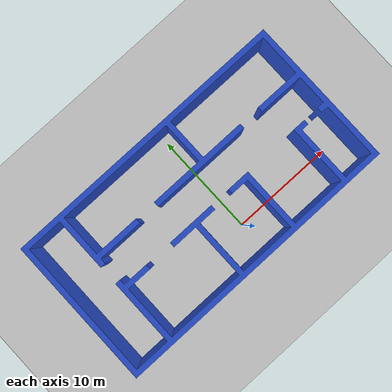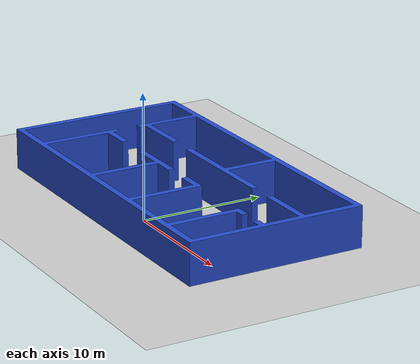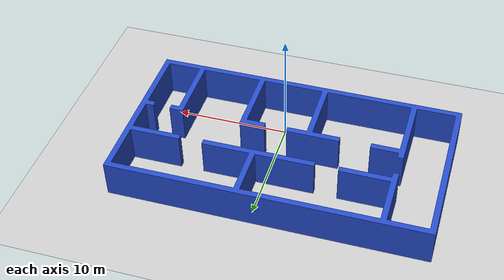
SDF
<sdf version="1.7">
 <world name="default">
  <light name="sun" type="directional">
   <pose>0 0 10 0 -0 0</pose>
   <diffuse>0.8 0.8 0.8 1</diffuse>
   <specular>0.2 0.2 0.2 1</specular>
   <attenuation>
    <range>1000</range>
    <constant>0.9</constant>
    <linear>0.01</linear>
    <quadratic>0.001</quadratic>
   </attenuation>
   <direction>-0.5 0.1 -0.9</direction>
   <spot><inner_angle>0</inner_angle><outer_angle>0</outer_angle><falloff>0</falloff></spot>
  </light>
  <model name="ground_plane">
   <static>1</static>
   <link name="link">
    <collision name="collision">
     <geometry><plane><normal>0 0 1</normal><size>100 100</size></plane></geometry>
     <surface>
      <contact><collide_bitmask>65535</collide_bitmask></contact>
      <friction><ode><mu>100</mu><mu2>50</mu2></ode></friction>
     </surface>
    </collision>
    <visual name="visual">
     <cast_shadows>0</cast_shadows>
     <geometry><plane><normal>0 0 1</normal><size>100 100</size></plane></geometry>
     <material>
      <script><uri>file://media/materials/scripts/gazebo.material</uri><name>Gazebo/Grey</name></script>
     </material>
    </visual>
   </link>
  </model>
  <gravity>0 0 -9.8</gravity>
  <magnetic_field>6e-06 2.3e-05 -4.2e-05</magnetic_field>
  <atmosphere type="adiabatic"/>
  <physics type="ode">
   <max_step_size>0.001</max_step_size>
   <real_time_factor>1</real_time_factor>
   <real_time_update_rate>1000</real_time_update_rate>
  </physics>
  <scene><ambient>0.4 0.4 0.4 1</ambient><background>0.7 0.7 0.7 1</background><shadows>1</shadows></scene>
  <spherical_coordinates>
   <surface_model>EARTH_WGS84</surface_model>
   <latitude_deg>0</latitude_deg>
   <longitude_deg>0</longitude_deg>
   <elevation>0</elevation>
   <heading_deg>0</heading_deg>
  </spherical_coordinates>
  <model name="office_better">
   <static>1</static>
   <frame name="object_frame"><pose relative_to="/world">0 0 0 0 -0 0</pose></frame>
   <pose relative_to="/world">32.0153 31.9937 31.8978 0 -0 0</pose>
   <link name="link">
    <pose>-32 -32 -32 0 -0 0</pose>
    <inertial>
     <mass>239.5</mass>
     <inertia>
      <ixx>6464.83</ixx>
      <ixy>225.633</ixy>
      <ixz>0</ixz>
      <iyy>19267</iyy>
      <iyz>0</iyz>
      <izz>25283.1</izz>
     </inertia>
     <pose relative_to="link_inertia_frame">-1.35 3.89 1.68 0 -0 0</pose>
     <frame name="link_inertia_frame"><pose relative_to="link_frame">0 0 0 0 -0 0</pose></frame>
    </inertial>
    <collision name="collision">
     <max_contacts>20</max_contacts>
     <pose relative_to="collision_frame">0 0 0 0 -0 0</pose>
     <geometry><mesh><uri>./model/office_better/meshes/mesh.stl</uri><scale>1 1 1</scale></mesh></geometry>
     <frame name="collision_frame"><pose relative_to="link_frame">0 0 0 0 -0 0</pose></frame>
    </collision>
    <visual name="visual">
     <pose relative_to="visual_frame">0 0 0 0 -0 0</pose>
     <material>
      <script><uri>file://media/materials/scripts/gazebo.material</uri><name>Gazebo/Blue</name></script>
      <shader type="vertex"><normal_map>__default__</normal_map></shader>
      <lighting>1</lighting>
      <ambient>0.15 0.75 0.35 1</ambient>
      <diffuse>0.1 0.95 0.25 1</diffuse>
      <specular>0.01 0.01 0.01 1</specular>
      <emissive>0 0 0 1</emissive>
     </material>
     <geometry><mesh><uri>./model/office_better/./meshes/mesh.stl</uri><scale>1 1 1</scale></mesh></geometry>
     <frame name="visual_frame"><pose relative_to="link_frame">0 0 0 0 -0 0</pose></frame>
    </visual>
    <frame name="link_frame"><pose relative_to="object_frame">0 0 0 0 -0 0</pose></frame>
   </link>
  </model>
 </world>
</sdf>
